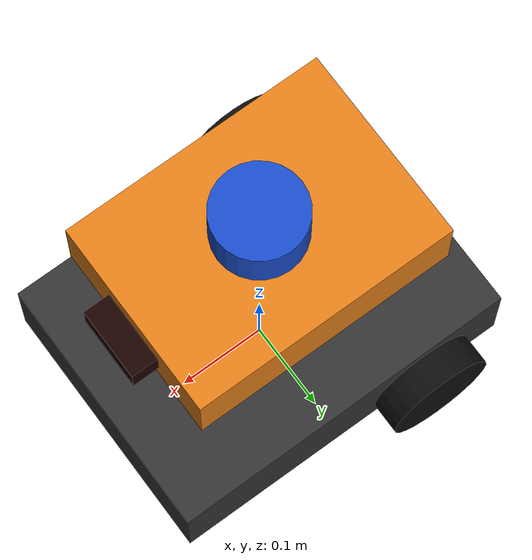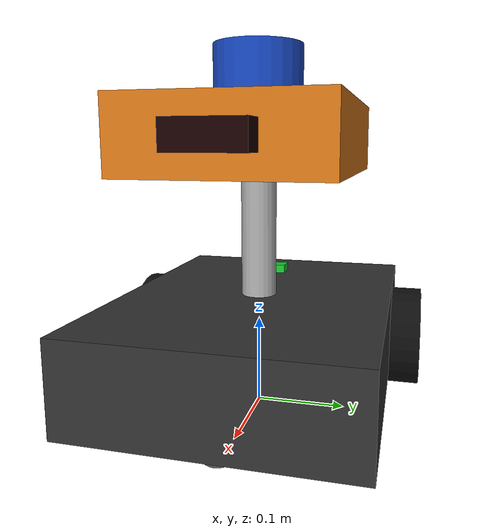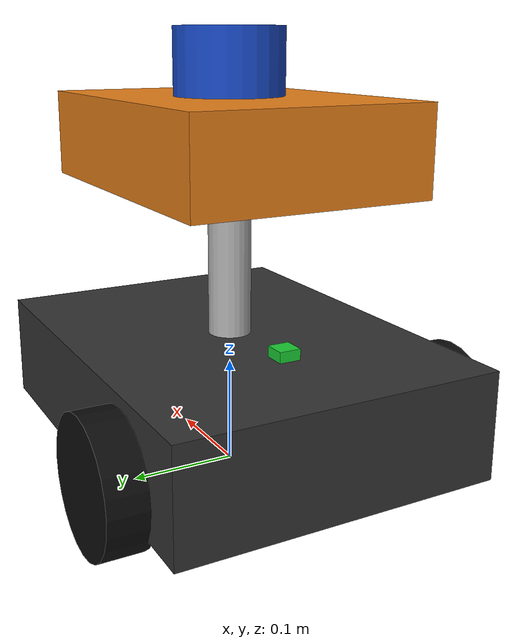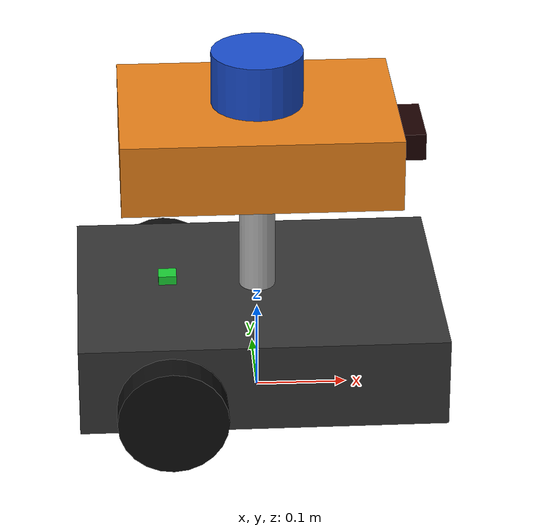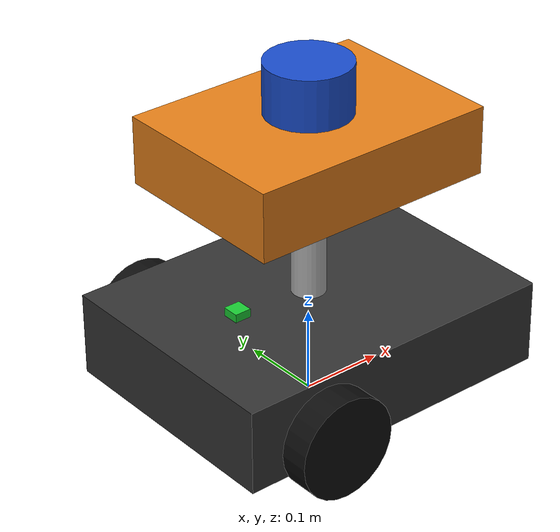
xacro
<?xml version="1.0"?>
<robot xmlns:xacro="http://www.ros.org/wiki/xacro" name="amr_robot">

  <xacro:arg name="tf_prefix" default=""/>

  <xacro:include filename="amr_base.xacro"/>
  <xacro:include filename="amr_lidar.xacro"/>
  <xacro:include filename="amr_imu.xacro"/>
  <xacro:include filename="amr_camera.xacro"/>

  <xacro:amr_base tf_prefix="$(arg tf_prefix)"/>
  <xacro:amr_lidar tf_prefix="$(arg tf_prefix)" parent="top_link"/>
  <xacro:amr_imu tf_prefix="$(arg tf_prefix)" parent="base_link"/>
  <xacro:amr_camera tf_prefix="$(arg tf_prefix)" parent="top_link"/>

  <!-- 驱动轮摩擦：mu1=纵向(滚动方向), mu2=侧向。
       真实橡胶轮 mu≈1.0；配合 max_wheel_torque 使撞墙时轮子打滑而非空转 -->
  <gazebo reference="$(arg tf_prefix)left_wheel_link">
    <mu1>1.0</mu1>
    <mu2>1.0</mu2>
  </gazebo>
  <gazebo reference="$(arg tf_prefix)right_wheel_link">
    <mu1>1.0</mu1>
    <mu2>1.0</mu2>
  </gazebo>

  <gazebo reference="$(arg tf_prefix)front_caster_link">
    <mu1>0.02</mu1>
    <mu2>0.02</mu2>
  </gazebo>

  <gazebo>
    <plugin filename="gz-sim-diff-drive-system" name="gz::sim::systems::DiffDrive">
      <left_joint>$(arg tf_prefix)left_wheel_joint</left_joint>
      <right_joint>$(arg tf_prefix)right_wheel_joint</right_joint>
      <wheel_separation>0.33</wheel_separation>
      <wheel_radius>0.06</wheel_radius>
      <max_wheel_torque>2.0</max_wheel_torque>
      <odom_publish_frequency>50</odom_publish_frequency>
      <topic>cmd_vel</topic>
      <odom_topic>odom</odom_topic>
      <tf_topic>tf</tf_topic>
      <frame_id>odom</frame_id>
      <!-- 2026-11-08 贴地修正：odom 的子帧改为 base_footprint（落地面 z=0），
           base_link 由 robot_state_publisher 经固定关节抬高 0.08 m。 -->
      <child_frame_id>$(arg tf_prefix)base_footprint</child_frame_id>
    </plugin>
    <!-- 关节状态发布（robot_state_publisher 需要 /joint_states）
         必须显式指定 topic：gz 默认发在 /joint_state（无 s），与 bridge 配置不符，
         会导致 RViz 中轮子关节无 TF -->
    <plugin filename="gz-sim-joint-state-publisher-system" name="gz::sim::systems::JointStatePublisher">
      <topic>joint_states</topic>
      <!-- 限频：30Hz 足够轮子可视化，同时降低 /tf 流量避免 teleop 卡顿 -->
      <update_rate>30</update_rate>
      <joint_name>$(arg tf_prefix)left_wheel_joint</joint_name>
      <joint_name>$(arg tf_prefix)right_wheel_joint</joint_name>
    </plugin>
  </gazebo>

</robot>

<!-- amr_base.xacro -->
<!-- 三轮差速底盘：base_link + 左右驱动轮 + 单个前脚轮，含支撑杆、碰撞与惯性
     高度基准：base_link 原点距地面 0.08m；驱动轮底与脚轮底均落在 z=-0.08（地面） -->
<robot xmlns:xacro="http://www.ros.org/wiki/xacro">
  <xacro:macro name="amr_base" params="tf_prefix:=''">

    <!-- 公共惯性宏：长方体 -->
    <xacro:macro name="box_inertia" params="mass x y z">
      <inertial>
        <mass value="${mass}"/>
        <inertia ixx="${mass*(y*y+z*z)/12.0}" ixy="0.0" ixz="0.0"
                 iyy="${mass*(x*x+z*z)/12.0}" iyz="0.0"
                 izz="${mass*(x*x+y*y)/12.0}"/>
      </inertial>
    </xacro:macro>

    <!-- 公共惯性宏：圆柱体（绕 z） -->
    <xacro:macro name="cylinder_inertia" params="mass r l">
      <inertial>
        <mass value="${mass}"/>
        <inertia ixx="${mass*(3*r*r+l*l)/12.0}" ixy="0.0" ixz="0.0"
                 iyy="${mass*(3*r*r+l*l)/12.0}" iyz="0.0"
                 izz="${mass*r*r/2.0}"/>
      </inertial>
    </xacro:macro>

    <link name="${tf_prefix}base_footprint">
      <inertial>
        <mass value="0.001"/>
        <inertia ixx="1e-6" ixy="0.0" ixz="0.0"
                 iyy="1e-6" iyz="0.0" izz="1e-6"/>
      </inertial>
    </link>
    <joint name="${tf_prefix}base_footprint_joint" type="fixed">
      <parent link="${tf_prefix}base_footprint"/>
      <child link="${tf_prefix}base_link"/>
      <origin xyz="0 0 0.08" rpy="0 0 0"/>
    </joint>

    <!-- 底盘主体：0.40(x) x 0.30(y) x 0.10(z)，几何中心即 base_link 原点
         顶面 z=+0.05，底面 z=-0.05（距地面 0.03m 离地间隙） -->
    <link name="${tf_prefix}base_link">
      <visual>
        <origin xyz="0 0 0" rpy="0 0 0"/>
        <geometry>
          <box size="0.40 0.30 0.10"/>
        </geometry>
        <material name="dark_gray">
          <color rgba="0.2 0.2 0.2 1.0"/>
        </material>
      </visual>
      <collision>
        <origin xyz="0 0 0" rpy="0 0 0"/>
        <geometry>
          <box size="0.40 0.30 0.10"/>
        </geometry>
      </collision>
      <xacro:box_inertia mass="10.0" x="0.40" y="0.30" z="0.10"/>
    </link>

    <!-- 支撑杆：连接底盘顶面(z=0.05)与上层设备仓底面(z=0.19)，高 0.14m -->
    <link name="${tf_prefix}pole_link">
      <visual>
        <origin xyz="0 0 0" rpy="0 0 0"/>
        <geometry>
          <cylinder radius="0.02" length="0.14"/>
        </geometry>
        <material name="silver">
          <color rgba="0.7 0.7 0.7 1.0"/>
        </material>
      </visual>
      <collision>
        <origin xyz="0 0 0" rpy="0 0 0"/>
        <geometry>
          <cylinder radius="0.02" length="0.14"/>
        </geometry>
      </collision>
      <xacro:cylinder_inertia mass="0.3" r="0.02" l="0.14"/>
    </link>
    <joint name="${tf_prefix}pole_joint" type="fixed">
      <parent link="${tf_prefix}base_link"/>
      <child link="${tf_prefix}pole_link"/>
      <!-- 杆中心在 (0.05 + 0.19)/2 = 0.12 -->
      <origin xyz="0 0 0.12" rpy="0 0 0"/>
    </joint>

    <!-- 上层设备仓：底面 z=0.19，中心 z=0.23，顶面 z=0.27 -->
    <link name="${tf_prefix}top_link">
      <visual>
        <origin xyz="0 0 0" rpy="0 0 0"/>
        <geometry>
          <box size="0.30 0.22 0.08"/>
        </geometry>
        <material name="orange">
          <color rgba="0.9 0.5 0.1 1.0"/>
        </material>
      </visual>
      <collision>
        <origin xyz="0 0 0" rpy="0 0 0"/>
        <geometry>
          <box size="0.30 0.22 0.08"/>
        </geometry>
      </collision>
      <xacro:box_inertia mass="2.0" x="0.30" y="0.22" z="0.08"/>
    </link>
    <joint name="${tf_prefix}top_joint" type="fixed">
      <parent link="${tf_prefix}base_link"/>
      <child link="${tf_prefix}top_link"/>
      <!-- top_link 中心高度 0.23，底面 0.19 正好落在杆顶 -->
      <origin xyz="0 0 0.23" rpy="0 0 0"/>
    </joint>

    <!-- 左驱动轮：半径 0.06，宽 0.04；轮心 z=-0.02，轮底 z=-0.08（地面） -->
    <link name="${tf_prefix}left_wheel_link">
      <visual>
        <origin xyz="0 0 0" rpy="1.5707963 0 0"/>
        <geometry>
          <cylinder radius="0.06" length="0.04"/>
        </geometry>
        <material name="wheel_black">
          <color rgba="0.05 0.05 0.05 1.0"/>
        </material>
      </visual>
      <collision>
        <origin xyz="0 0 0" rpy="1.5707963 0 0"/>
        <geometry>
          <cylinder radius="0.06" length="0.04"/>
        </geometry>
      </collision>
      <xacro:cylinder_inertia mass="0.5" r="0.06" l="0.04"/>
    </link>
    <joint name="${tf_prefix}left_wheel_joint" type="continuous">
      <parent link="${tf_prefix}base_link"/>
      <child link="${tf_prefix}left_wheel_link"/>
      <!-- 后移至 x=-0.10：形成前万向轮 + 后双驱动轮的稳定差速布局 -->
      <origin xyz="-0.10 0.165 -0.02" rpy="0 0 0"/>
      <axis xyz="0 1 0"/>
    </joint>

    <!-- 右驱动轮 -->
    <link name="${tf_prefix}right_wheel_link">
      <visual>
        <origin xyz="0 0 0" rpy="1.5707963 0 0"/>
        <geometry>
          <cylinder radius="0.06" length="0.04"/>
        </geometry>
        <material name="wheel_black">
          <color rgba="0.05 0.05 0.05 1.0"/>
        </material>
      </visual>
      <collision>
        <origin xyz="0 0 0" rpy="1.5707963 0 0"/>
        <geometry>
          <cylinder radius="0.06" length="0.04"/>
        </geometry>
      </collision>
      <xacro:cylinder_inertia mass="0.5" r="0.06" l="0.04"/>
    </link>
    <joint name="${tf_prefix}right_wheel_joint" type="continuous">
      <parent link="${tf_prefix}base_link"/>
      <child link="${tf_prefix}right_wheel_link"/>
      <origin xyz="-0.10 -0.165 -0.02" rpy="0 0 0"/>
      <axis xyz="0 1 0"/>
    </joint>

    <link name="${tf_prefix}front_caster_link">
      <visual>
        <geometry>
          <sphere radius="0.025"/>
        </geometry>
        <material name="caster_gray">
          <color rgba="0.5 0.5 0.5 1.0"/>
        </material>
      </visual>
      <collision>
        <geometry>
          <sphere radius="0.025"/>
        </geometry>
      </collision>
      <inertial>
        <mass value="0.1"/>
        <inertia ixx="0.00001" ixy="0.0" ixz="0.0"
                 iyy="0.00001" iyz="0.0" izz="0.00001"/>
      </inertial>
    </link>
    <joint name="${tf_prefix}front_caster_joint" type="fixed">
      <parent link="${tf_prefix}base_link"/>
      <child link="${tf_prefix}front_caster_link"/>
      <origin xyz="0.15 0.0 -0.055" rpy="0 0 0"/>
    </joint>

  </xacro:macro>
</robot>

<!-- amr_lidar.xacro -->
<!-- 2D 激光雷达：gz-sim gpu_lidar 传感器，话题由 ros_gz_bridge 桥到 /scan -->
<robot xmlns:xacro="http://www.ros.org/wiki/xacro">
  <xacro:macro name="amr_lidar" params="tf_prefix:='' parent:='base_link'">

    <link name="${tf_prefix}lidar_link">
      <visual>
        <geometry>
          <cylinder radius="0.05" length="0.06"/>
        </geometry>
        <material name="blue">
          <color rgba="0.1 0.3 0.8 1.0"/>
        </material>
      </visual>
      <collision>
        <geometry>
          <cylinder radius="0.05" length="0.06"/>
        </geometry>
      </collision>
      <inertial>
        <mass value="0.2"/>
        <inertia ixx="0.0002" ixy="0.0" ixz="0.0"
                 iyy="0.0002" iyz="0.0" izz="0.0004"/>
      </inertial>
    </link>
    <joint name="${tf_prefix}lidar_joint" type="fixed">
      <parent link="${tf_prefix}${parent}"/>
      <child link="${tf_prefix}lidar_link"/>
      <!-- top_link 顶面在自身坐标 z=0.04；lidar 柱高 0.06，中心置于 0.04+0.03=0.07，使底面落于顶面 -->
      <origin xyz="0.0 0.0 0.07" rpy="0 0 0"/>
    </joint>

    <gazebo reference="${tf_prefix}lidar_link">
      <sensor name="gpu_lidar" type="gpu_lidar">
        <pose>0 0 0 0 0 0</pose>
        <topic>scan</topic>
        <gz_frame_id>${tf_prefix}lidar_link</gz_frame_id>
        <update_rate>10</update_rate>
        <lidar>
          <scan>
            <horizontal>
              <samples>360</samples>
              <resolution>1</resolution>
              <min_angle>-3.1415926</min_angle>
              <max_angle>3.1415926</max_angle>
            </horizontal>
          </scan>
          <range>
            <min>0.12</min>
            <max>12.0</max>
            <resolution>0.01</resolution>
          </range>
          <noise>
            <type>gaussian</type>
            <mean>0.0</mean>
            <stddev>0.01</stddev>
          </noise>
        </lidar>
        <always_on>true</always_on>
        <visualize>false</visualize>
      </sensor>
    </gazebo>

  </xacro:macro>
</robot>

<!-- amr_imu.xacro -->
<!-- IMU 传感器：gz-sim imu_sensor，桥接到 /imu/data -->
<robot xmlns:xacro="http://www.ros.org/wiki/xacro">
  <xacro:macro name="amr_imu" params="tf_prefix:='' parent:='base_link'">

    <link name="${tf_prefix}imu_link">
      <visual>
        <geometry>
          <box size="0.02 0.02 0.01"/>
        </geometry>
        <material name="green">
          <color rgba="0.1 0.8 0.2 1.0"/>
        </material>
      </visual>
       <collision>
        <geometry>
          <box size="0.02 0.02 0.01"/>
        </geometry>
      </collision>
      <inertial>
        <mass value="0.01"/>
        <inertia ixx="0.000001" ixy="0.0" ixz="0.0"
                 iyy="0.000001" iyz="0.0" izz="0.000001"/>
      </inertial>
    </link>
    <joint name="${tf_prefix}imu_joint" type="fixed">
      <parent link="${tf_prefix}${parent}"/>
      <child link="${tf_prefix}imu_link"/>
      <!-- 置于两轮中点(x=-0.10, y=0)正上方：差速车旋转中心，角速度/加速度耦合最小；
           底面 z=0.055 落在底盘顶面(z=0.05)之上，且远离中心支撑杆(x=0) -->
      <origin xyz="-0.10 0.0 0.06" rpy="0 0 0"/>
    </joint>

    <gazebo reference="${tf_prefix}imu_link">
      <sensor name="imu_sensor" type="imu">
        <pose>0 0 0 0 0 0</pose>
        <topic>imu/data</topic>
        <gz_frame_id>${tf_prefix}imu_link</gz_frame_id>
        <update_rate>50</update_rate>
        <always_on>true</always_on>
        <imu>
          <angular_velocity>
            <x><noise type="gaussian"><mean>0.0</mean><stddev>0.001</stddev></noise></x>
            <y><noise type="gaussian"><mean>0.0</mean><stddev>0.001</stddev></noise></y>
            <z><noise type="gaussian"><mean>0.0</mean><stddev>0.001</stddev></noise></z>
          </angular_velocity>
          <linear_acceleration>
            <x><noise type="gaussian"><mean>0.0</mean><stddev>0.01</stddev></noise></x>
            <y><noise type="gaussian"><mean>0.0</mean><stddev>0.01</stddev></noise></y>
            <z><noise type="gaussian"><mean>0.0</mean><stddev>0.01</stddev></noise></z>
          </linear_acceleration>
        </imu>
      </sensor>
    </gazebo>

  </xacro:macro>
</robot>

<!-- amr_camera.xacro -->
<!-- 前置 RGB 摄像头：gz-sim camera 传感器，桥接 /camera/image_raw(+compressed) -->
<robot xmlns:xacro="http://www.ros.org/wiki/xacro">
  <xacro:macro name="amr_camera" params="tf_prefix:='' parent:='top_link'">

    <link name="${tf_prefix}camera_link">
      <visual>
        <geometry>
          <box size="0.03 0.08 0.03"/>
        </geometry>
        <material name="camera_black">
          <color rgba="0.1 0.0 0.0 1.0"/>
        </material>
      </visual>
      <collision>
        <geometry>
          <box size="0.03 0.08 0.03"/>
        </geometry>
      </collision>
      <inertial>
        <mass value="0.05"/>
        <inertia ixx="0.00001" ixy="0.0" ixz="0.0"
                 iyy="0.00001" iyz="0.0" izz="0.00001"/>
      </inertial>
    </link>

    <!-- 光学坐标系：z 朝前、x 朝右、y 朝下（ROS 相机约定） -->
    <link name="${tf_prefix}camera_optical_link"/>
    <joint name="${tf_prefix}camera_optical_joint" type="fixed">
      <parent link="${tf_prefix}camera_link"/>
      <child link="${tf_prefix}camera_optical_link"/>
      <origin xyz="0 0 0" rpy="-1.5707963 0 -1.5707963"/>
    </joint>

    <joint name="${tf_prefix}camera_joint" type="fixed">
      <parent link="${tf_prefix}${parent}"/>
      <child link="${tf_prefix}camera_link"/>
      <!-- 贴在 top_link 前壁(x=0.15)正面：箱体深 0.03，中心 x=0.15+0.015=0.165，后壁贴壁；z=0 居正面中部 -->
      <origin xyz="0.165 0.0 0.0" rpy="0 0 0"/>
    </joint>

    <gazebo reference="${tf_prefix}camera_link">
      <sensor name="rgb_camera" type="camera">
        <pose>0 0 0 0 0 0</pose>
        <topic>camera/image_raw</topic>
        <gz_frame_id>${tf_prefix}camera_optical_link</gz_frame_id>
        <!-- 软件渲染（llvmpipe）下摄像头是主要渲染负载，且与 gpu_lidar 共用
             ogre2 渲染队列：640×480@15Hz 曾拖垮渲染管线，导致 /scan 时间戳
             持续滞后 /clock（SLAM 发散根因）。降为 320×240@5Hz，
             像素吞吐降 16 倍，巡检/识别用途仍可用。 -->
        <update_rate>5</update_rate>
        <always_on>true</always_on>
        <camera>
          <horizontal_fov>1.047</horizontal_fov>
          <image>
            <width>320</width>
            <height>240</height>
            <format>R8G8B8</format>
          </image>
          <clip>
            <near>0.05</near>
            <far>30.0</far>
          </clip>
        </camera>
      </sensor>
    </gazebo>

  </xacro:macro>
</robot>
